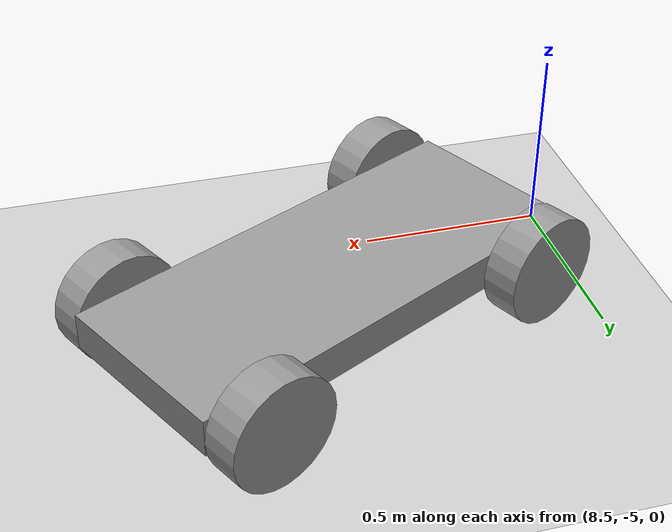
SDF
<sdf version="1.7">
 <world name="default">
  <model name="ground_plane">
   <static>1</static>
   <link name="link">
    <collision name="collision">
     <geometry><plane><normal>0 0 1</normal><size>100 100</size></plane></geometry>
     <surface>
      <contact><collide_bitmask>65535</collide_bitmask></contact>
      <friction><ode><mu>100</mu><mu2>50</mu2></ode></friction>
     </surface>
    </collision>
    <visual name="visual">
     <cast_shadows>0</cast_shadows>
     <geometry><plane><normal>0 0 1</normal><size>100 100</size></plane></geometry>
     <material>
      <script><uri>file://media/materials/scripts/gazebo.material</uri><name>Gazebo/Grey</name></script>
     </material>
    </visual>
   </link>
  </model>
  <model name="little_car_0">
   <link name="link_1">
    <inertial>
     <mass>1</mass>
     <inertia>
      <ixx>0.166667</ixx>
      <ixy>0</ixy>
      <ixz>0</ixz>
      <iyy>0.166667</iyy>
      <iyz>0</iyz>
      <izz>0.166667</izz>
     </inertia>
    </inertial>
    <pose>-0.316357 -0.367633 0 0 -0 0</pose>
    <visual name="visual">
     <geometry><box><size>1.2 0.5 0.1</size></box></geometry>
     <material>
      <lighting>1</lighting>
      <script><uri>file://media/materials/scripts/gazebo.material</uri><name>Gazebo/Grey</name></script>
      <shader type="pixel"><normal_map>__default__</normal_map></shader>
      <ambient>0.3 0.3 0.3 1</ambient>
      <diffuse>0.7 0.7 0.7 1</diffuse>
      <specular>0.204 0.396 0.643 1</specular>
      <emissive>0.204 0.396 0.643 1</emissive>
     </material>
    </visual>
    <collision name="collision">
     <geometry><box><size>1.2 0.5 0.1</size></box></geometry>
     <surface>
      <friction>
       <ode><mu>1</mu><mu2>1</mu2><fdir1>0 0 0</fdir1><slip1>0</slip1><slip2>0</slip2></ode>
       <torsional>
        <coefficient>1</coefficient>
        <patch_radius>0</patch_radius>
        <surface_radius>0</surface_radius>
        <use_patch_radius>1</use_patch_radius>
        <ode><slip>0</slip></ode>
       </torsional>
      </friction>
      <bounce><restitution_coefficient>0</restitution_coefficient><threshold>1e+06</threshold></bounce>
      <contact>
       <collide_without_contact>0</collide_without_contact>
       <collide_without_contact_bitmask>1</collide_without_contact_bitmask>
       <collide_bitmask>1</collide_bitmask>
       <ode>
        <soft_cfm>0</soft_cfm>
        <soft_erp>0.2</soft_erp>
        <kp>1e+13</kp>
        <kd>1</kd>
        <max_vel>0.01</max_vel>
        <min_depth>0</min_depth>
       </ode>
       <bullet>
        <split_impulse>1</split_impulse>
        <split_impulse_penetration_threshold>-0.01</split_impulse_penetration_threshold>
        <soft_cfm>0</soft_cfm>
        <soft_erp>0.2</soft_erp>
        <kp>1e+13</kp>
        <kd>1</kd>
       </bullet>
      </contact>
     </surface>
    </collision>
   </link>
   <link name="link_2">
    <inertial>
     <mass>1</mass>
     <inertia><ixx>0.145833</ixx><ixy>0</ixy><ixz>0</ixz><iyy>0.145833</iyy><iyz>0</iyz><izz>0.125</izz></inertia>
    </inertial>
    <pose>-0.766357 -0.667648 -0.015 1.5707 -0 0</pose>
    <visual name="visual">
     <geometry><cylinder><radius>0.15</radius><length>0.1</length></cylinder></geometry>
     <material>
      <lighting>1</lighting>
      <script><uri>file://media/materials/scripts/gazebo.material</uri><name>Gazebo/Grey</name></script>
      <shader type="pixel"><normal_map>__default__</normal_map></shader>
      <ambient>0.3 0.3 0.3 1</ambient>
      <diffuse>0.7 0.7 0.7 1</diffuse>
      <specular>0.204 0.396 0.643 1</specular>
      <emissive>0.961 0.475 0 1</emissive>
     </material>
    </visual>
    <collision name="collision">
     <geometry><cylinder><radius>0.15</radius><length>0.1</length></cylinder></geometry>
     <surface>
      <friction>
       <ode><mu>1</mu><mu2>1</mu2><fdir1>0 0 0</fdir1><slip1>0</slip1><slip2>0</slip2></ode>
       <torsional>
        <coefficient>1</coefficient>
        <patch_radius>0</patch_radius>
        <surface_radius>0</surface_radius>
        <use_patch_radius>1</use_patch_radius>
        <ode><slip>0</slip></ode>
       </torsional>
      </friction>
      <bounce><restitution_coefficient>0</restitution_coefficient><threshold>1e+06</threshold></bounce>
      <contact>
       <collide_without_contact>0</collide_without_contact>
       <collide_without_contact_bitmask>1</collide_without_contact_bitmask>
       <collide_bitmask>1</collide_bitmask>
       <ode>
        <soft_cfm>0</soft_cfm>
        <soft_erp>0.2</soft_erp>
        <kp>1e+13</kp>
        <kd>1</kd>
        <max_vel>0.01</max_vel>
        <min_depth>0</min_depth>
       </ode>
       <bullet>
        <split_impulse>1</split_impulse>
        <split_impulse_penetration_threshold>-0.01</split_impulse_penetration_threshold>
        <soft_cfm>0</soft_cfm>
        <soft_erp>0.2</soft_erp>
        <kp>1e+13</kp>
        <kd>1</kd>
       </bullet>
      </contact>
     </surface>
    </collision>
   </link>
   <link name="link_2_clone">
    <inertial>
     <mass>1</mass>
     <inertia><ixx>0.145833</ixx><ixy>0</ixy><ixz>0</ixz><iyy>0.145833</iyy><iyz>0</iyz><izz>0.125</izz></inertia>
    </inertial>
    <pose>0.133643 -0.667648 -0.015 1.5707 -0 0</pose>
    <visual name="visual">
     <geometry><cylinder><radius>0.15</radius><length>0.1</length></cylinder></geometry>
     <material>
      <lighting>1</lighting>
      <script><uri>file://media/materials/scripts/gazebo.material</uri><name>Gazebo/Grey</name></script>
      <shader type="pixel"><normal_map>__default__</normal_map></shader>
      <ambient>0.3 0.3 0.3 1</ambient>
      <diffuse>0.7 0.7 0.7 1</diffuse>
      <specular>0.204 0.396 0.643 1</specular>
      <emissive>0.961 0.475 0 1</emissive>
     </material>
    </visual>
    <collision name="collision">
     <geometry><cylinder><radius>0.15</radius><length>0.1</length></cylinder></geometry>
     <surface>
      <friction>
       <ode><mu>1</mu><mu2>1</mu2><fdir1>0 0 0</fdir1><slip1>0</slip1><slip2>0</slip2></ode>
       <torsional>
        <coefficient>1</coefficient>
        <patch_radius>0</patch_radius>
        <surface_radius>0</surface_radius>
        <use_patch_radius>1</use_patch_radius>
        <ode><slip>0</slip></ode>
       </torsional>
      </friction>
      <bounce><restitution_coefficient>0</restitution_coefficient><threshold>1e+06</threshold></bounce>
      <contact>
       <collide_without_contact>0</collide_without_contact>
       <collide_without_contact_bitmask>1</collide_without_contact_bitmask>
       <collide_bitmask>1</collide_bitmask>
       <ode>
        <soft_cfm>0</soft_cfm>
        <soft_erp>0.2</soft_erp>
        <kp>1e+13</kp>
        <kd>1</kd>
        <max_vel>0.01</max_vel>
        <min_depth>0</min_depth>
       </ode>
       <bullet>
        <split_impulse>1</split_impulse>
        <split_impulse_penetration_threshold>-0.01</split_impulse_penetration_threshold>
        <soft_cfm>0</soft_cfm>
        <soft_erp>0.2</soft_erp>
        <kp>1e+13</kp>
        <kd>1</kd>
       </bullet>
      </contact>
     </surface>
    </collision>
   </link>
   <link name="link_2_clone_0">
    <inertial>
     <mass>1</mass>
     <inertia><ixx>0.145833</ixx><ixy>0</ixy><ixz>0</ixz><iyy>0.145833</iyy><iyz>0</iyz><izz>0.125</izz></inertia>
    </inertial>
    <pose>-0.766357 -0.067619 -0.015 1.5707 -0 0</pose>
    <visual name="visual">
     <geometry><cylinder><radius>0.15</radius><length>0.1</length></cylinder></geometry>
     <material>
      <lighting>1</lighting>
      <script><uri>file://media/materials/scripts/gazebo.material</uri><name>Gazebo/Grey</name></script>
      <shader type="pixel"><normal_map>__default__</normal_map></shader>
      <ambient>0.3 0.3 0.3 1</ambient>
      <diffuse>0.7 0.7 0.7 1</diffuse>
      <specular>0.204 0.396 0.643 1</specular>
      <emissive>0.961 0.475 0 1</emissive>
     </material>
    </visual>
    <collision name="collision">
     <geometry><cylinder><radius>0.15</radius><length>0.1</length></cylinder></geometry>
     <surface>
      <friction>
       <ode><mu>1</mu><mu2>1</mu2><fdir1>0 0 0</fdir1><slip1>0</slip1><slip2>0</slip2></ode>
       <torsional>
        <coefficient>1</coefficient>
        <patch_radius>0</patch_radius>
        <surface_radius>0</surface_radius>
        <use_patch_radius>1</use_patch_radius>
        <ode><slip>0</slip></ode>
       </torsional>
      </friction>
      <bounce><restitution_coefficient>0</restitution_coefficient><threshold>1e+06</threshold></bounce>
      <contact>
       <collide_without_contact>0</collide_without_contact>
       <collide_without_contact_bitmask>1</collide_without_contact_bitmask>
       <collide_bitmask>1</collide_bitmask>
       <ode>
        <soft_cfm>0</soft_cfm>
        <soft_erp>0.2</soft_erp>
        <kp>1e+13</kp>
        <kd>1</kd>
        <max_vel>0.01</max_vel>
        <min_depth>0</min_depth>
       </ode>
       <bullet>
        <split_impulse>1</split_impulse>
        <split_impulse_penetration_threshold>-0.01</split_impulse_penetration_threshold>
        <soft_cfm>0</soft_cfm>
        <soft_erp>0.2</soft_erp>
        <kp>1e+13</kp>
        <kd>1</kd>
       </bullet>
      </contact>
     </surface>
    </collision>
   </link>
   <link name="link_2_clone_1">
    <inertial>
     <mass>1</mass>
     <inertia><ixx>0.145833</ixx><ixy>0</ixy><ixz>0</ixz><iyy>0.145833</iyy><iyz>0</iyz><izz>0.125</izz></inertia>
    </inertial>
    <pose>0.133643 -0.067619 -0.015 1.5707 -0 0</pose>
    <visual name="visual">
     <geometry><cylinder><radius>0.15</radius><length>0.1</length></cylinder></geometry>
     <material>
      <lighting>1</lighting>
      <script><uri>file://media/materials/scripts/gazebo.material</uri><name>Gazebo/Grey</name></script>
      <shader type="pixel"><normal_map>__default__</normal_map></shader>
      <ambient>0.3 0.3 0.3 1</ambient>
      <diffuse>0.7 0.7 0.7 1</diffuse>
      <specular>0.204 0.396 0.643 1</specular>
      <emissive>0.961 0.475 0 1</emissive>
     </material>
    </visual>
    <collision name="collision">
     <geometry><cylinder><radius>0.15</radius><length>0.1</length></cylinder></geometry>
     <surface>
      <friction>
       <ode><mu>1</mu><mu2>1</mu2><fdir1>0 0 0</fdir1><slip1>0</slip1><slip2>0</slip2></ode>
       <torsional>
        <coefficient>1</coefficient>
        <patch_radius>0</patch_radius>
        <surface_radius>0</surface_radius>
        <use_patch_radius>1</use_patch_radius>
        <ode><slip>0</slip></ode>
       </torsional>
      </friction>
      <bounce><restitution_coefficient>0</restitution_coefficient><threshold>1e+06</threshold></bounce>
      <contact>
       <collide_without_contact>0</collide_without_contact>
       <collide_without_contact_bitmask>1</collide_without_contact_bitmask>
       <collide_bitmask>1</collide_bitmask>
       <ode>
        <soft_cfm>0</soft_cfm>
        <soft_erp>0.2</soft_erp>
        <kp>1e+13</kp>
        <kd>1</kd>
        <max_vel>0.01</max_vel>
        <min_depth>0</min_depth>
       </ode>
       <bullet>
        <split_impulse>1</split_impulse>
        <split_impulse_penetration_threshold>-0.01</split_impulse_penetration_threshold>
        <soft_cfm>0</soft_cfm>
        <soft_erp>0.2</soft_erp>
        <kp>1e+13</kp>
        <kd>1</kd>
       </bullet>
      </contact>
     </surface>
    </collision>
   </link>
   <joint name="link_1_JOINT_1" type="revolute">
    <parent>link_1</parent>
    <child>link_2</child>
    <axis>
     <xyz>0 0 1</xyz>
     <limit>
      <lower>-1.79769e+308</lower>
      <upper>1.79769e+308</upper>
      <effort>-1</effort>
      <velocity>-1</velocity>
     </limit>
     <dynamics>
      <spring_reference>0</spring_reference>
      <spring_stiffness>0</spring_stiffness>
      <damping>0</damping>
      <friction>0</friction>
     </dynamics>
    </axis>
    <physics>
     <ode><limit><cfm>0</cfm><erp>0.2</erp></limit><suspension><cfm>0</cfm><erp>0.2</erp></suspension></ode>
    </physics>
   </joint>
   <joint name="link_1_JOINT_2" type="revolute">
    <parent>link_1</parent>
    <child>link_2_clone_0</child>
    <axis>
     <xyz>0 0 1</xyz>
     <limit>
      <lower>-1.79769e+308</lower>
      <upper>1.79769e+308</upper>
      <effort>-1</effort>
      <velocity>-1</velocity>
     </limit>
     <dynamics>
      <spring_reference>0</spring_reference>
      <spring_stiffness>0</spring_stiffness>
      <damping>0</damping>
      <friction>0</friction>
     </dynamics>
    </axis>
    <physics>
     <ode><limit><cfm>0</cfm><erp>0.2</erp></limit><suspension><cfm>0</cfm><erp>0.2</erp></suspension></ode>
    </physics>
   </joint>
   <joint name="link_1_JOINT_3" type="revolute">
    <parent>link_1</parent>
    <child>link_2_clone</child>
    <axis>
     <xyz>0 0 1</xyz>
     <limit>
      <lower>-1.79769e+308</lower>
      <upper>1.79769e+308</upper>
      <effort>-1</effort>
      <velocity>-1</velocity>
     </limit>
     <dynamics>
      <spring_reference>0</spring_reference>
      <spring_stiffness>0</spring_stiffness>
      <damping>0</damping>
      <friction>0</friction>
     </dynamics>
    </axis>
    <physics>
     <ode><limit><cfm>0</cfm><erp>0.2</erp></limit><suspension><cfm>0</cfm><erp>0.2</erp></suspension></ode>
    </physics>
   </joint>
   <joint name="link_1_JOINT_4" type="revolute">
    <parent>link_1</parent>
    <child>link_2_clone_1</child>
    <axis>
     <xyz>1 0 0</xyz>
     <limit>
      <lower>-1.79769e+308</lower>
      <upper>1.79769e+308</upper>
      <effort>-1</effort>
      <velocity>-1</velocity>
     </limit>
     <dynamics>
      <spring_reference>0</spring_reference>
      <spring_stiffness>0</spring_stiffness>
      <damping>0</damping>
      <friction>0</friction>
     </dynamics>
    </axis>
    <physics>
     <ode><limit><cfm>0</cfm><erp>0.2</erp></limit><suspension><cfm>0</cfm><erp>0.2</erp></suspension></ode>
    </physics>
   </joint>
   <static>0</static>
   <pose>9.31494 -4.17832 0.165002 -3e-06 -1e-05 0.472191</pose>
  </model>
  <model name="dynamic_rocks">
   <static>1</static>
   <plugin name="ignition::gazebo::systems::Breadcrumbs" filename="libignition-gazebo-breadcrumbs-system.so">
    <max_deployments>5</max_deployments>
    <disable_physics_time>15</disable_physics_time>
    <allow_renaming>1</allow_renaming>
    <breadcrumb>
     <sdf version="1.6">
      <include>
       <uri>https://fuel.ignitionrobotics.org/1.0/OpenRobotics/models/Falling Rock 1</uri>
       <name>Rock</name>
       <pose>-0.242603 -0.288984 0 0 -0 0</pose>
      </include>
     </sdf>
    </breadcrumb>
   </plugin>
   <plugin name="ignition::gazebo::systems::Breadcrumbs" filename="libignition-gazebo-breadcrumbs-system.so">
    <max_deployments>5</max_deployments>
    <disable_physics_time>15</disable_physics_time>
    <allow_renaming>1</allow_renaming>
    <breadcrumb>
     <sdf version="1.6">
      <include>
       <uri>https://fuel.ignitionrobotics.org/1.0/OpenRobotics/models/Falling Rock 1</uri>
       <name>Rock</name>
       <pose>0 1.4254 0.38776 0 -0 0</pose>
      </include>
     </sdf>
    </breadcrumb>
   </plugin>
   <plugin name="ignition::gazebo::systems::Breadcrumbs" filename="libignition-gazebo-breadcrumbs-system.so">
    <max_deployments>5</max_deployments>
    <disable_physics_time>15</disable_physics_time>
    <allow_renaming>1</allow_renaming>
    <breadcrumb>
     <sdf version="1.6">
      <include>
       <uri>https://fuel.ignitionrobotics.org/1.0/OpenRobotics/models/Falling Rock 2</uri>
       <name>Rock</name>
       <pose>0.860175 -0.154506 0 0 -0 0</pose>
      </include>
     </sdf>
    </breadcrumb>
   </plugin>
   <plugin name="ignition::gazebo::systems::Breadcrumbs" filename="libignition-gazebo-breadcrumbs-system.so">
    <max_deployments>5</max_deployments>
    <disable_physics_time>15</disable_physics_time>
    <allow_renaming>1</allow_renaming>
    <breadcrumb>
     <sdf version="1.6">
      <include>
       <uri>https://fuel.ignitionrobotics.org/1.0/OpenRobotics/models/Falling Rock 2</uri>
       <name>Rock</name>
       <pose>0.5 0.5 1.1382 0 -0 0</pose>
      </include>
     </sdf>
    </breadcrumb>
   </plugin>
   <plugin name="ignition::gazebo::systems::Breadcrumbs" filename="libignition-gazebo-breadcrumbs-system.so">
    <max_deployments>5</max_deployments>
    <disable_physics_time>15</disable_physics_time>
    <allow_renaming>1</allow_renaming>
    <breadcrumb>
     <sdf version="1.6">
      <include>
       <uri>https://fuel.ignitionrobotics.org/1.0/OpenRobotics/models/Falling Rock 3</uri>
       <name>Rock</name>
       <pose>0.598022 0.604573 0 0 -0 0</pose>
      </include>
     </sdf>
    </breadcrumb>
   </plugin>
   <plugin name="ignition::gazebo::systems::Breadcrumbs" filename="libignition-gazebo-breadcrumbs-system.so">
    <max_deployments>5</max_deployments>
    <disable_physics_time>15</disable_physics_time>
    <allow_renaming>1</allow_renaming>
    <breadcrumb>
     <sdf version="1.6">
      <include>
       <uri>https://fuel.ignitionrobotics.org/1.0/OpenRobotics/models/Falling Rock 3</uri>
       <name>Rock</name>
       <pose>0 0.694381 -0.197702 0 -0 0</pose>
      </include>
     </sdf>
    </breadcrumb>
   </plugin>
   <plugin name="ignition::gazebo::systems::Breadcrumbs" filename="libignition-gazebo-breadcrumbs-system.so">
    <max_deployments>5</max_deployments>
    <disable_physics_time>15</disable_physics_time>
    <allow_renaming>1</allow_renaming>
    <breadcrumb>
     <sdf version="1.6">
      <include>
       <uri>https://fuel.ignitionrobotics.org/1.0/OpenRobotics/models/Falling Rock 4</uri>
       <name>Rock</name>
       <pose>0.16 0.5 0.4 0 -0 0</pose>
      </include>
     </sdf>
    </breadcrumb>
   </plugin>
   <plugin name="ignition::gazebo::systems::Breadcrumbs" filename="libignition-gazebo-breadcrumbs-system.so">
    <max_deployments>5</max_deployments>
    <disable_physics_time>15</disable_physics_time>
    <allow_renaming>1</allow_renaming>
    <breadcrumb>
     <sdf version="1.6">
      <include>
       <uri>https://fuel.ignitionrobotics.org/1.0/OpenRobotics/models/Falling Rock 4</uri>
       <name>Rock</name>
       <pose>1.10853 0.713934 0.27 0 -0 0</pose>
      </include>
     </sdf>
    </breadcrumb>
   </plugin>
   <plugin name="ignition::gazebo::systems::Breadcrumbs" filename="libignition-gazebo-breadcrumbs-system.so">
    <max_deployments>5</max_deployments>
    <disable_physics_time>15</disable_physics_time>
    <allow_renaming>1</allow_renaming>
    <breadcrumb>
     <sdf version="1.6">
      <include>
       <uri>https://fuel.ignitionrobotics.org/1.0/OpenRobotics/models/Falling Rock 4</uri>
       <name>Rock</name>
       <pose>0.5 0.04 0.671465 0 -0 0</pose>
      </include>
     </sdf>
    </breadcrumb>
   </plugin>
   <pose>5.22813 -7.44046 0 0 -0 0</pose>
  </model>
 </world>
</sdf>
